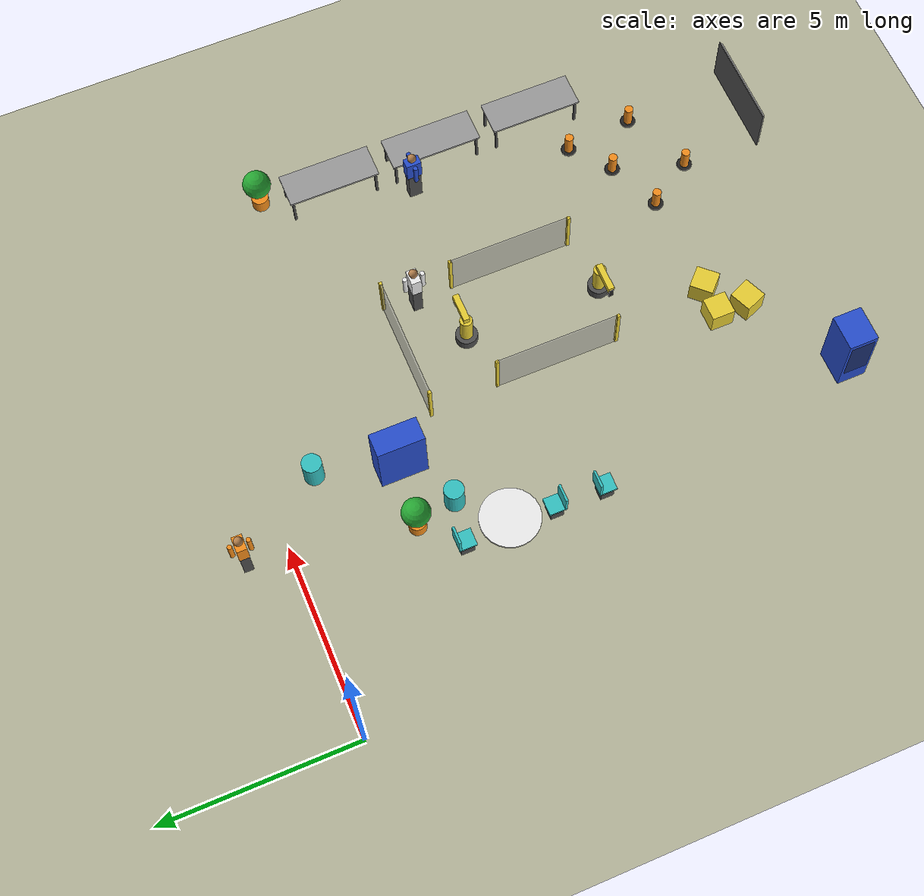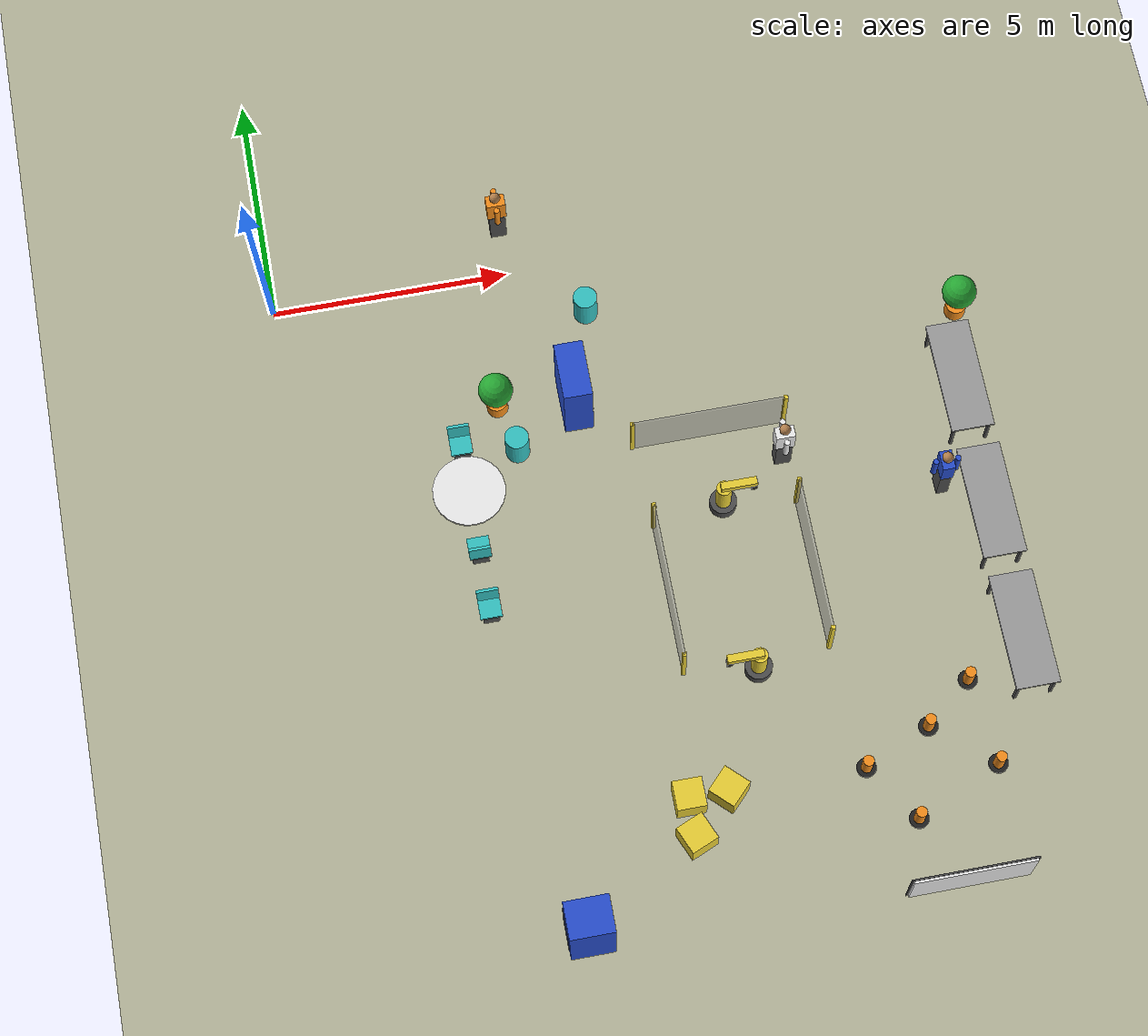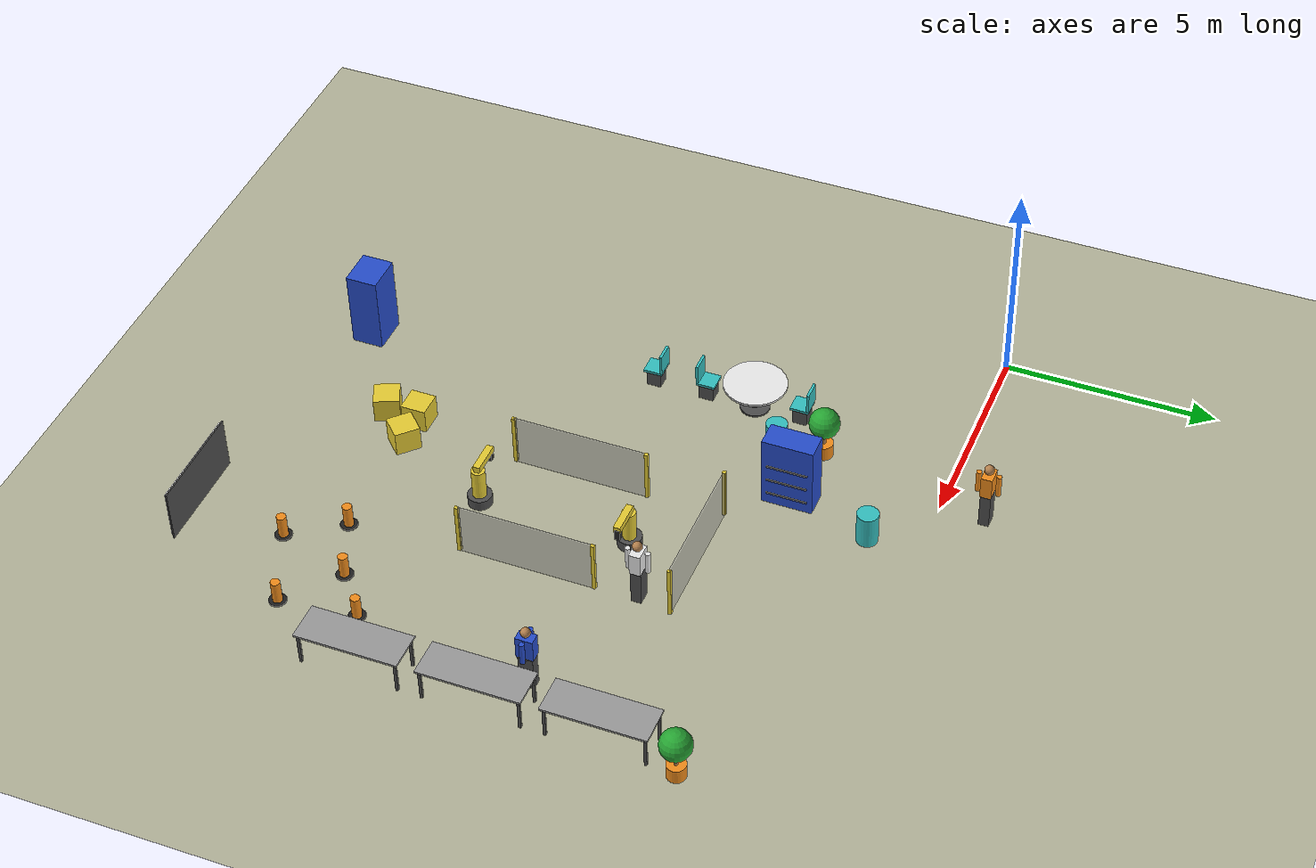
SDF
<sdf version="1.6">
 <world name="smart_building">
  <model name="ground_plane">
   <static>true</static>
   <link name="link">
    <collision name="collision">
     <geometry><plane><normal>0 0 1</normal><size>100 100</size></plane></geometry>
     <surface><friction><ode><mu>1.0</mu><mu2>1.0</mu2></ode></friction></surface>
    </collision>
    <visual name="visual">
     <geometry><plane><normal>0 0 1</normal><size>100 100</size></plane></geometry>
     <material>
      <script><uri>file://media/materials/scripts/gazebo.material</uri><name>Gazebo/Residential</name></script>
     </material>
    </visual>
   </link>
  </model>
  <model name="cafe_table_2">
   <static>true</static>
   <pose>3.4000 -5.0000 0.0000 0.0000 0.0000 0.0000</pose>
   <link name="link_0">
    <pose>0.0000 0.0000 0.7250 0.0000 0.0000 0.0000</pose>
    <collision name="link_0_collision">
     <geometry><cylinder><radius>0.7500</radius><length>0.0500</length></cylinder></geometry>
    </collision>
    <visual name="link_0_visual">
     <geometry><cylinder><radius>0.7500</radius><length>0.0500</length></cylinder></geometry>
     <material>
      <script><uri>file://media/materials/scripts/gazebo.material</uri><name>Gazebo/White</name></script>
     </material>
    </visual>
   </link>
   <link name="link_1">
    <pose>0.0000 0.0000 0.3500 0.0000 0.0000 0.0000</pose>
    <collision name="link_1_collision">
     <geometry><cylinder><radius>0.0800</radius><length>0.7000</length></cylinder></geometry>
    </collision>
    <visual name="link_1_visual">
     <geometry><cylinder><radius>0.0800</radius><length>0.7000</length></cylinder></geometry>
     <material>
      <script><uri>file://media/materials/scripts/gazebo.material</uri><name>Gazebo/DarkGrey</name></script>
     </material>
    </visual>
   </link>
   <link name="link_2">
    <pose>0.0000 0.0000 0.0200 0.0000 0.0000 0.0000</pose>
    <collision name="link_2_collision">
     <geometry><cylinder><radius>0.3500</radius><length>0.0400</length></cylinder></geometry>
    </collision>
    <visual name="link_2_visual">
     <geometry><cylinder><radius>0.3500</radius><length>0.0400</length></cylinder></geometry>
     <material>
      <script><uri>file://media/materials/scripts/gazebo.material</uri><name>Gazebo/DarkGrey</name></script>
     </material>
    </visual>
   </link>
  </model>
  <model name="cafe_chair_2_0">
   <static>true</static>
   <pose>3.4000 -3.8500 0.0000 0.0000 0.0000 3.1416</pose>
   <link name="link_0">
    <pose>0.0000 0.0000 0.4400 0.0000 0.0000 0.0000</pose>
    <collision name="link_0_collision">
     <geometry><box><size>0.4500 0.4500 0.0600</size></box></geometry>
    </collision>
    <visual name="link_0_visual">
     <geometry><box><size>0.4500 0.4500 0.0600</size></box></geometry>
     <material>
      <script><uri>file://media/materials/scripts/gazebo.material</uri><name>Gazebo/Turquoise</name></script>
     </material>
    </visual>
   </link>
   <link name="link_1">
    <pose>0.0000 -0.2000 0.7200 0.0000 0.0000 0.0000</pose>
    <collision name="link_1_collision">
     <geometry><box><size>0.4500 0.0600 0.5000</size></box></geometry>
    </collision>
    <visual name="link_1_visual">
     <geometry><box><size>0.4500 0.0600 0.5000</size></box></geometry>
     <material>
      <script><uri>file://media/materials/scripts/gazebo.material</uri><name>Gazebo/Turquoise</name></script>
     </material>
    </visual>
   </link>
   <link name="link_2">
    <pose>0.0000 0.0000 0.2100 0.0000 0.0000 0.0000</pose>
    <collision name="link_2_collision">
     <geometry><box><size>0.3400 0.3400 0.4200</size></box></geometry>
    </collision>
    <visual name="link_2_visual">
     <geometry><box><size>0.3400 0.3400 0.4200</size></box></geometry>
     <material>
      <script><uri>file://media/materials/scripts/gazebo.material</uri><name>Gazebo/DarkGrey</name></script>
     </material>
    </visual>
   </link>
  </model>
  <model name="cafe_chair_2_1">
   <static>true</static>
   <pose>3.4000 -6.1500 0.0000 0.0000 0.0000 0.0000</pose>
   <link name="link_0">
    <pose>0.0000 0.0000 0.4400 0.0000 0.0000 0.0000</pose>
    <collision name="link_0_collision">
     <geometry><box><size>0.4500 0.4500 0.0600</size></box></geometry>
    </collision>
    <visual name="link_0_visual">
     <geometry><box><size>0.4500 0.4500 0.0600</size></box></geometry>
     <material>
      <script><uri>file://media/materials/scripts/gazebo.material</uri><name>Gazebo/Turquoise</name></script>
     </material>
    </visual>
   </link>
   <link name="link_1">
    <pose>0.0000 -0.2000 0.7200 0.0000 0.0000 0.0000</pose>
    <collision name="link_1_collision">
     <geometry><box><size>0.4500 0.0600 0.5000</size></box></geometry>
    </collision>
    <visual name="link_1_visual">
     <geometry><box><size>0.4500 0.0600 0.5000</size></box></geometry>
     <material>
      <script><uri>file://media/materials/scripts/gazebo.material</uri><name>Gazebo/Turquoise</name></script>
     </material>
    </visual>
   </link>
   <link name="link_2">
    <pose>0.0000 0.0000 0.2100 0.0000 0.0000 0.0000</pose>
    <collision name="link_2_collision">
     <geometry><box><size>0.3400 0.3400 0.4200</size></box></geometry>
    </collision>
    <visual name="link_2_visual">
     <geometry><box><size>0.3400 0.3400 0.4200</size></box></geometry>
     <material>
      <script><uri>file://media/materials/scripts/gazebo.material</uri><name>Gazebo/DarkGrey</name></script>
     </material>
    </visual>
   </link>
  </model>
  <model name="cafe_chair_5_0">
   <static>true</static>
   <pose>3.4000 -7.4500 0.0000 0.0000 0.0000 3.1416</pose>
   <link name="link_0">
    <pose>0.0000 0.0000 0.4400 0.0000 0.0000 0.0000</pose>
    <collision name="link_0_collision">
     <geometry><box><size>0.4500 0.4500 0.0600</size></box></geometry>
    </collision>
    <visual name="link_0_visual">
     <geometry><box><size>0.4500 0.4500 0.0600</size></box></geometry>
     <material>
      <script><uri>file://media/materials/scripts/gazebo.material</uri><name>Gazebo/Turquoise</name></script>
     </material>
    </visual>
   </link>
   <link name="link_1">
    <pose>0.0000 -0.2000 0.7200 0.0000 0.0000 0.0000</pose>
    <collision name="link_1_collision">
     <geometry><box><size>0.4500 0.0600 0.5000</size></box></geometry>
    </collision>
    <visual name="link_1_visual">
     <geometry><box><size>0.4500 0.0600 0.5000</size></box></geometry>
     <material>
      <script><uri>file://media/materials/scripts/gazebo.material</uri><name>Gazebo/Turquoise</name></script>
     </material>
    </visual>
   </link>
   <link name="link_2">
    <pose>0.0000 0.0000 0.2100 0.0000 0.0000 0.0000</pose>
    <collision name="link_2_collision">
     <geometry><box><size>0.3400 0.3400 0.4200</size></box></geometry>
    </collision>
    <visual name="link_2_visual">
     <geometry><box><size>0.3400 0.3400 0.4200</size></box></geometry>
     <material>
      <script><uri>file://media/materials/scripts/gazebo.material</uri><name>Gazebo/DarkGrey</name></script>
     </material>
    </visual>
   </link>
  </model>
  <model name="cafe_vending_1">
   <static>true</static>
   <pose>4.2000 -14.3000 0.0000 0.0000 0.0000 0.0000</pose>
   <link name="link_0">
    <pose>0.0000 0.0000 0.9500 0.0000 0.0000 0.0000</pose>
    <collision name="link_0_collision">
     <geometry><box><size>0.9000 0.7500 1.9000</size></box></geometry>
    </collision>
    <visual name="link_0_visual">
     <geometry><box><size>0.9000 0.7500 1.9000</size></box></geometry>
     <material>
      <script><uri>file://media/materials/scripts/gazebo.material</uri><name>Gazebo/Blue</name></script>
     </material>
    </visual>
   </link>
   <link name="link_1">
    <pose>-0.4600 0.0000 1.1500 0.0000 0.0000 0.0000</pose>
    <visual name="link_1_visual">
     <geometry><box><size>0.0200 0.6000 1.2000</size></box></geometry>
     <material>
      <script><uri>file://media/materials/scripts/gazebo.material</uri><name>Gazebo/BlackTransparent</name></script>
     </material>
    </visual>
   </link>
  </model>
  <model name="plant_cafe_b">
   <static>true</static>
   <pose>4.3000 -3.0000 0.0000 0.0000 0.0000 0.0000</pose>
   <link name="link_0">
    <pose>0.0000 0.0000 0.1800 0.0000 0.0000 0.0000</pose>
    <collision name="link_0_collision">
     <geometry><cylinder><radius>0.2200</radius><length>0.3600</length></cylinder></geometry>
    </collision>
    <visual name="link_0_visual">
     <geometry><cylinder><radius>0.2200</radius><length>0.3600</length></cylinder></geometry>
     <material>
      <script><uri>file://media/materials/scripts/gazebo.material</uri><name>Gazebo/Orange</name></script>
     </material>
    </visual>
   </link>
   <link name="link_1">
    <pose>0.0000 0.0000 0.5000 0.0000 0.0000 0.0000</pose>
    <collision name="link_1_collision">
     <geometry><cylinder><radius>0.0500</radius><length>0.4000</length></cylinder></geometry>
    </collision>
    <visual name="link_1_visual">
     <geometry><cylinder><radius>0.0500</radius><length>0.4000</length></cylinder></geometry>
     <material>
      <script><uri>file://media/materials/scripts/gazebo.material</uri><name>Gazebo/Wood</name></script>
     </material>
    </visual>
   </link>
   <link name="link_2">
    <pose>0.0000 0.0000 0.9500 0.0000 0.0000 0.0000</pose>
    <collision name="link_2_collision"><geometry><sphere><radius>0.3600</radius></sphere></geometry></collision>
    <visual name="link_2_visual">
     <geometry><sphere><radius>0.3600</radius></sphere></geometry>
     <material>
      <script><uri>file://media/materials/scripts/gazebo.material</uri><name>Gazebo/Green</name></script>
     </material>
    </visual>
   </link>
  </model>
  <model name="cafe_bin">
   <static>true</static>
   <pose>4.5500 -4.0500 0.0000 0.0000 0.0000 0.0000</pose>
   <link name="link_0">
    <pose>0.0000 0.0000 0.4000 0.0000 0.0000 0.0000</pose>
    <collision name="link_0_collision">
     <geometry><cylinder><radius>0.2500</radius><length>0.8000</length></cylinder></geometry>
    </collision>
    <visual name="link_0_visual">
     <geometry><cylinder><radius>0.2500</radius><length>0.8000</length></cylinder></geometry>
     <material>
      <script><uri>file://media/materials/scripts/gazebo.material</uri><name>Gazebo/Turquoise</name></script>
     </material>
    </visual>
   </link>
  </model>
  <model name="lab_bench_0">
   <static>true</static>
   <pose>13.8000 -4.4000 0.0000 0.0000 0.0000 1.5708</pose>
   <link name="link_0">
    <pose>0.0000 0.0000 0.8250 0.0000 0.0000 0.0000</pose>
    <collision name="link_0_collision">
     <geometry><box><size>2.4000 0.9000 0.0500</size></box></geometry>
    </collision>
    <visual name="link_0_visual">
     <geometry><box><size>2.4000 0.9000 0.0500</size></box></geometry>
     <material>
      <script><uri>file://media/materials/scripts/gazebo.material</uri><name>Gazebo/Grey</name></script>
     </material>
    </visual>
   </link>
   <link name="link_1">
    <pose>-1.1200 -0.3700 0.4000 0.0000 0.0000 0.0000</pose>
    <collision name="link_1_collision">
     <geometry><box><size>0.0600 0.0600 0.8000</size></box></geometry>
    </collision>
    <visual name="link_1_visual">
     <geometry><box><size>0.0600 0.0600 0.8000</size></box></geometry>
     <material>
      <script><uri>file://media/materials/scripts/gazebo.material</uri><name>Gazebo/DarkGrey</name></script>
     </material>
    </visual>
   </link>
   <link name="link_2">
    <pose>-1.1200 0.3700 0.4000 0.0000 0.0000 0.0000</pose>
    <collision name="link_2_collision">
     <geometry><box><size>0.0600 0.0600 0.8000</size></box></geometry>
    </collision>
    <visual name="link_2_visual">
     <geometry><box><size>0.0600 0.0600 0.8000</size></box></geometry>
     <material>
      <script><uri>file://media/materials/scripts/gazebo.material</uri><name>Gazebo/DarkGrey</name></script>
     </material>
    </visual>
   </link>
   <link name="link_3">
    <pose>1.1200 -0.3700 0.4000 0.0000 0.0000 0.0000</pose>
    <collision name="link_3_collision">
     <geometry><box><size>0.0600 0.0600 0.8000</size></box></geometry>
    </collision>
    <visual name="link_3_visual">
     <geometry><box><size>0.0600 0.0600 0.8000</size></box></geometry>
     <material>
      <script><uri>file://media/materials/scripts/gazebo.material</uri><name>Gazebo/DarkGrey</name></script>
     </material>
    </visual>
   </link>
   <link name="link_4">
    <pose>1.1200 0.3700 0.4000 0.0000 0.0000 0.0000</pose>
    <collision name="link_4_collision">
     <geometry><box><size>0.0600 0.0600 0.8000</size></box></geometry>
    </collision>
    <visual name="link_4_visual">
     <geometry><box><size>0.0600 0.0600 0.8000</size></box></geometry>
     <material>
      <script><uri>file://media/materials/scripts/gazebo.material</uri><name>Gazebo/DarkGrey</name></script>
     </material>
    </visual>
   </link>
  </model>
  <model name="lab_bench_1">
   <static>true</static>
   <pose>13.8000 -7.2000 0.0000 0.0000 0.0000 1.5708</pose>
   <link name="link_0">
    <pose>0.0000 0.0000 0.8250 0.0000 0.0000 0.0000</pose>
    <collision name="link_0_collision">
     <geometry><box><size>2.4000 0.9000 0.0500</size></box></geometry>
    </collision>
    <visual name="link_0_visual">
     <geometry><box><size>2.4000 0.9000 0.0500</size></box></geometry>
     <material>
      <script><uri>file://media/materials/scripts/gazebo.material</uri><name>Gazebo/Grey</name></script>
     </material>
    </visual>
   </link>
   <link name="link_1">
    <pose>-1.1200 -0.3700 0.4000 0.0000 0.0000 0.0000</pose>
    <collision name="link_1_collision">
     <geometry><box><size>0.0600 0.0600 0.8000</size></box></geometry>
    </collision>
    <visual name="link_1_visual">
     <geometry><box><size>0.0600 0.0600 0.8000</size></box></geometry>
     <material>
      <script><uri>file://media/materials/scripts/gazebo.material</uri><name>Gazebo/DarkGrey</name></script>
     </material>
    </visual>
   </link>
   <link name="link_2">
    <pose>-1.1200 0.3700 0.4000 0.0000 0.0000 0.0000</pose>
    <collision name="link_2_collision">
     <geometry><box><size>0.0600 0.0600 0.8000</size></box></geometry>
    </collision>
    <visual name="link_2_visual">
     <geometry><box><size>0.0600 0.0600 0.8000</size></box></geometry>
     <material>
      <script><uri>file://media/materials/scripts/gazebo.material</uri><name>Gazebo/DarkGrey</name></script>
     </material>
    </visual>
   </link>
   <link name="link_3">
    <pose>1.1200 -0.3700 0.4000 0.0000 0.0000 0.0000</pose>
    <collision name="link_3_collision">
     <geometry><box><size>0.0600 0.0600 0.8000</size></box></geometry>
    </collision>
    <visual name="link_3_visual">
     <geometry><box><size>0.0600 0.0600 0.8000</size></box></geometry>
     <material>
      <script><uri>file://media/materials/scripts/gazebo.material</uri><name>Gazebo/DarkGrey</name></script>
     </material>
    </visual>
   </link>
   <link name="link_4">
    <pose>1.1200 0.3700 0.4000 0.0000 0.0000 0.0000</pose>
    <collision name="link_4_collision">
     <geometry><box><size>0.0600 0.0600 0.8000</size></box></geometry>
    </collision>
    <visual name="link_4_visual">
     <geometry><box><size>0.0600 0.0600 0.8000</size></box></geometry>
     <material>
      <script><uri>file://media/materials/scripts/gazebo.material</uri><name>Gazebo/DarkGrey</name></script>
     </material>
    </visual>
   </link>
  </model>
  <model name="lab_bench_2">
   <static>true</static>
   <pose>13.8000 -10.0000 0.0000 0.0000 0.0000 1.5708</pose>
   <link name="link_0">
    <pose>0.0000 0.0000 0.8250 0.0000 0.0000 0.0000</pose>
    <collision name="link_0_collision">
     <geometry><box><size>2.4000 0.9000 0.0500</size></box></geometry>
    </collision>
    <visual name="link_0_visual">
     <geometry><box><size>2.4000 0.9000 0.0500</size></box></geometry>
     <material>
      <script><uri>file://media/materials/scripts/gazebo.material</uri><name>Gazebo/Grey</name></script>
     </material>
    </visual>
   </link>
   <link name="link_1">
    <pose>-1.1200 -0.3700 0.4000 0.0000 0.0000 0.0000</pose>
    <collision name="link_1_collision">
     <geometry><box><size>0.0600 0.0600 0.8000</size></box></geometry>
    </collision>
    <visual name="link_1_visual">
     <geometry><box><size>0.0600 0.0600 0.8000</size></box></geometry>
     <material>
      <script><uri>file://media/materials/scripts/gazebo.material</uri><name>Gazebo/DarkGrey</name></script>
     </material>
    </visual>
   </link>
   <link name="link_2">
    <pose>-1.1200 0.3700 0.4000 0.0000 0.0000 0.0000</pose>
    <collision name="link_2_collision">
     <geometry><box><size>0.0600 0.0600 0.8000</size></box></geometry>
    </collision>
    <visual name="link_2_visual">
     <geometry><box><size>0.0600 0.0600 0.8000</size></box></geometry>
     <material>
      <script><uri>file://media/materials/scripts/gazebo.material</uri><name>Gazebo/DarkGrey</name></script>
     </material>
    </visual>
   </link>
   <link name="link_3">
    <pose>1.1200 -0.3700 0.4000 0.0000 0.0000 0.0000</pose>
    <collision name="link_3_collision">
     <geometry><box><size>0.0600 0.0600 0.8000</size></box></geometry>
    </collision>
    <visual name="link_3_visual">
     <geometry><box><size>0.0600 0.0600 0.8000</size></box></geometry>
     <material>
      <script><uri>file://media/materials/scripts/gazebo.material</uri><name>Gazebo/DarkGrey</name></script>
     </material>
    </visual>
   </link>
   <link name="link_4">
    <pose>1.1200 0.3700 0.4000 0.0000 0.0000 0.0000</pose>
    <collision name="link_4_collision">
     <geometry><box><size>0.0600 0.0600 0.8000</size></box></geometry>
    </collision>
    <visual name="link_4_visual">
     <geometry><box><size>0.0600 0.0600 0.8000</size></box></geometry>
     <material>
      <script><uri>file://media/materials/scripts/gazebo.material</uri><name>Gazebo/DarkGrey</name></script>
     </material>
    </visual>
   </link>
  </model>
  <model name="lab_arm_a">
   <static>true</static>
   <pose>8.5000 -6.0000 0.0000 0.0000 0.0000 0.0000</pose>
   <link name="link_0">
    <pose>0.0000 0.0000 0.1250 0.0000 0.0000 0.0000</pose>
    <collision name="link_0_collision">
     <geometry><cylinder><radius>0.2800</radius><length>0.2500</length></cylinder></geometry>
    </collision>
    <visual name="link_0_visual">
     <geometry><cylinder><radius>0.2800</radius><length>0.2500</length></cylinder></geometry>
     <material>
      <script><uri>file://media/materials/scripts/gazebo.material</uri><name>Gazebo/DarkGrey</name></script>
     </material>
    </visual>
   </link>
   <link name="link_1">
    <pose>0.0000 0.0000 0.5500 0.0000 0.0000 0.0000</pose>
    <collision name="link_1_collision">
     <geometry><cylinder><radius>0.1600</radius><length>0.8500</length></cylinder></geometry>
    </collision>
    <visual name="link_1_visual">
     <geometry><cylinder><radius>0.1600</radius><length>0.8500</length></cylinder></geometry>
     <material>
      <script><uri>file://media/materials/scripts/gazebo.material</uri><name>Gazebo/ZincYellow</name></script>
     </material>
    </visual>
   </link>
   <link name="link_2">
    <pose>0.3000 0.0000 1.0500 0.0000 0.0000 0.0000</pose>
    <collision name="link_2_collision">
     <geometry><box><size>0.7500 0.1600 0.1600</size></box></geometry>
    </collision>
    <visual name="link_2_visual">
     <geometry><box><size>0.7500 0.1600 0.1600</size></box></geometry>
     <material>
      <script><uri>file://media/materials/scripts/gazebo.material</uri><name>Gazebo/ZincYellow</name></script>
     </material>
    </visual>
   </link>
   <link name="link_3">
    <pose>0.6200 0.0000 0.9000 0.0000 0.0000 0.0000</pose>
    <collision name="link_3_collision">
     <geometry><box><size>0.1200 0.1200 0.2800</size></box></geometry>
    </collision>
    <visual name="link_3_visual">
     <geometry><box><size>0.1200 0.1200 0.2800</size></box></geometry>
     <material>
      <script><uri>file://media/materials/scripts/gazebo.material</uri><name>Gazebo/FlatBlack</name></script>
     </material>
    </visual>
   </link>
  </model>
  <model name="lab_arm_b">
   <static>true</static>
   <pose>8.5000 -9.6000 0.0000 0.0000 0.0000 3.1416</pose>
   <link name="link_0">
    <pose>0.0000 0.0000 0.1250 0.0000 0.0000 0.0000</pose>
    <collision name="link_0_collision">
     <geometry><cylinder><radius>0.2800</radius><length>0.2500</length></cylinder></geometry>
    </collision>
    <visual name="link_0_visual">
     <geometry><cylinder><radius>0.2800</radius><length>0.2500</length></cylinder></geometry>
     <material>
      <script><uri>file://media/materials/scripts/gazebo.material</uri><name>Gazebo/DarkGrey</name></script>
     </material>
    </visual>
   </link>
   <link name="link_1">
    <pose>0.0000 0.0000 0.5500 0.0000 0.0000 0.0000</pose>
    <collision name="link_1_collision">
     <geometry><cylinder><radius>0.1600</radius><length>0.8500</length></cylinder></geometry>
    </collision>
    <visual name="link_1_visual">
     <geometry><cylinder><radius>0.1600</radius><length>0.8500</length></cylinder></geometry>
     <material>
      <script><uri>file://media/materials/scripts/gazebo.material</uri><name>Gazebo/ZincYellow</name></script>
     </material>
    </visual>
   </link>
   <link name="link_2">
    <pose>0.3000 0.0000 1.0500 0.0000 0.0000 0.0000</pose>
    <collision name="link_2_collision">
     <geometry><box><size>0.7500 0.1600 0.1600</size></box></geometry>
    </collision>
    <visual name="link_2_visual">
     <geometry><box><size>0.7500 0.1600 0.1600</size></box></geometry>
     <material>
      <script><uri>file://media/materials/scripts/gazebo.material</uri><name>Gazebo/ZincYellow</name></script>
     </material>
    </visual>
   </link>
   <link name="link_3">
    <pose>0.6200 0.0000 0.9000 0.0000 0.0000 0.0000</pose>
    <collision name="link_3_collision">
     <geometry><box><size>0.1200 0.1200 0.2800</size></box></geometry>
    </collision>
    <visual name="link_3_visual">
     <geometry><box><size>0.1200 0.1200 0.2800</size></box></geometry>
     <material>
      <script><uri>file://media/materials/scripts/gazebo.material</uri><name>Gazebo/FlatBlack</name></script>
     </material>
    </visual>
   </link>
  </model>
  <model name="lab_fence_0">
   <static>true</static>
   <pose>7.0000 -7.8000 0.0000 0.0000 0.0000 1.5708</pose>
   <link name="link_0">
    <pose>0.0000 0.0000 0.6500 0.0000 0.0000 0.0000</pose>
    <collision name="link_0_collision">
     <geometry><box><size>3.2000 0.0400 1.3000</size></box></geometry>
    </collision>
    <visual name="link_0_visual">
     <geometry><box><size>3.2000 0.0400 1.3000</size></box></geometry>
     <material>
      <script><uri>file://media/materials/scripts/gazebo.material</uri><name>Gazebo/GreyTransparent</name></script>
     </material>
    </visual>
   </link>
   <link name="link_1">
    <pose>-1.6000 0.0000 0.6500 0.0000 0.0000 0.0000</pose>
    <collision name="link_1_collision">
     <geometry><box><size>0.0800 0.0800 1.3000</size></box></geometry>
    </collision>
    <visual name="link_1_visual">
     <geometry><box><size>0.0800 0.0800 1.3000</size></box></geometry>
     <material>
      <script><uri>file://media/materials/scripts/gazebo.material</uri><name>Gazebo/ZincYellow</name></script>
     </material>
    </visual>
   </link>
   <link name="link_2">
    <pose>1.6000 0.0000 0.6500 0.0000 0.0000 0.0000</pose>
    <collision name="link_2_collision">
     <geometry><box><size>0.0800 0.0800 1.3000</size></box></geometry>
    </collision>
    <visual name="link_2_visual">
     <geometry><box><size>0.0800 0.0800 1.3000</size></box></geometry>
     <material>
      <script><uri>file://media/materials/scripts/gazebo.material</uri><name>Gazebo/ZincYellow</name></script>
     </material>
    </visual>
   </link>
  </model>
  <model name="lab_fence_1">
   <static>true</static>
   <pose>10.0000 -7.8000 0.0000 0.0000 0.0000 1.5708</pose>
   <link name="link_0">
    <pose>0.0000 0.0000 0.6500 0.0000 0.0000 0.0000</pose>
    <collision name="link_0_collision">
     <geometry><box><size>3.2000 0.0400 1.3000</size></box></geometry>
    </collision>
    <visual name="link_0_visual">
     <geometry><box><size>3.2000 0.0400 1.3000</size></box></geometry>
     <material>
      <script><uri>file://media/materials/scripts/gazebo.material</uri><name>Gazebo/GreyTransparent</name></script>
     </material>
    </visual>
   </link>
   <link name="link_1">
    <pose>-1.6000 0.0000 0.6500 0.0000 0.0000 0.0000</pose>
    <collision name="link_1_collision">
     <geometry><box><size>0.0800 0.0800 1.3000</size></box></geometry>
    </collision>
    <visual name="link_1_visual">
     <geometry><box><size>0.0800 0.0800 1.3000</size></box></geometry>
     <material>
      <script><uri>file://media/materials/scripts/gazebo.material</uri><name>Gazebo/ZincYellow</name></script>
     </material>
    </visual>
   </link>
   <link name="link_2">
    <pose>1.6000 0.0000 0.6500 0.0000 0.0000 0.0000</pose>
    <collision name="link_2_collision">
     <geometry><box><size>0.0800 0.0800 1.3000</size></box></geometry>
    </collision>
    <visual name="link_2_visual">
     <geometry><box><size>0.0800 0.0800 1.3000</size></box></geometry>
     <material>
      <script><uri>file://media/materials/scripts/gazebo.material</uri><name>Gazebo/ZincYellow</name></script>
     </material>
    </visual>
   </link>
  </model>
  <model name="lab_fence_2">
   <static>true</static>
   <pose>8.5000 -4.4000 0.0000 0.0000 0.0000 0.0000</pose>
   <link name="link_0">
    <pose>0.0000 0.0000 0.6500 0.0000 0.0000 0.0000</pose>
    <collision name="link_0_collision">
     <geometry><box><size>3.2000 0.0400 1.3000</size></box></geometry>
    </collision>
    <visual name="link_0_visual">
     <geometry><box><size>3.2000 0.0400 1.3000</size></box></geometry>
     <material>
      <script><uri>file://media/materials/scripts/gazebo.material</uri><name>Gazebo/GreyTransparent</name></script>
     </material>
    </visual>
   </link>
   <link name="link_1">
    <pose>-1.6000 0.0000 0.6500 0.0000 0.0000 0.0000</pose>
    <collision name="link_1_collision">
     <geometry><box><size>0.0800 0.0800 1.3000</size></box></geometry>
    </collision>
    <visual name="link_1_visual">
     <geometry><box><size>0.0800 0.0800 1.3000</size></box></geometry>
     <material>
      <script><uri>file://media/materials/scripts/gazebo.material</uri><name>Gazebo/ZincYellow</name></script>
     </material>
    </visual>
   </link>
   <link name="link_2">
    <pose>1.6000 0.0000 0.6500 0.0000 0.0000 0.0000</pose>
    <collision name="link_2_collision">
     <geometry><box><size>0.0800 0.0800 1.3000</size></box></geometry>
    </collision>
    <visual name="link_2_visual">
     <geometry><box><size>0.0800 0.0800 1.3000</size></box></geometry>
     <material>
      <script><uri>file://media/materials/scripts/gazebo.material</uri><name>Gazebo/ZincYellow</name></script>
     </material>
    </visual>
   </link>
  </model>
  <model name="lab_cone_0">
   <static>true</static>
   <pose>11.6000 -11.4000 0.0000 0.0000 0.0000 0.0000</pose>
   <link name="link_0">
    <pose>0.0000 0.0000 0.0150 0.0000 0.0000 0.0000</pose>
    <collision name="link_0_collision">
     <geometry><cylinder><radius>0.2000</radius><length>0.0300</length></cylinder></geometry>
    </collision>
    <visual name="link_0_visual">
     <geometry><cylinder><radius>0.2000</radius><length>0.0300</length></cylinder></geometry>
     <material>
      <script><uri>file://media/materials/scripts/gazebo.material</uri><name>Gazebo/FlatBlack</name></script>
     </material>
    </visual>
   </link>
   <link name="link_1">
    <pose>0.0000 0.0000 0.3000 0.0000 0.0000 0.0000</pose>
    <collision name="link_1_collision">
     <geometry><cylinder><radius>0.1100</radius><length>0.5500</length></cylinder></geometry>
    </collision>
    <visual name="link_1_visual">
     <geometry><cylinder><radius>0.1100</radius><length>0.5500</length></cylinder></geometry>
     <material>
      <script><uri>file://media/materials/scripts/gazebo.material</uri><name>Gazebo/Orange</name></script>
     </material>
    </visual>
   </link>
  </model>
  <model name="lab_cone_1">
   <static>true</static>
   <pose>12.8000 -12.4000 0.0000 0.0000 0.0000 0.0000</pose>
   <link name="link_0">
    <pose>0.0000 0.0000 0.0150 0.0000 0.0000 0.0000</pose>
    <collision name="link_0_collision">
     <geometry><cylinder><radius>0.2000</radius><length>0.0300</length></cylinder></geometry>
    </collision>
    <visual name="link_0_visual">
     <geometry><cylinder><radius>0.2000</radius><length>0.0300</length></cylinder></geometry>
     <material>
      <script><uri>file://media/materials/scripts/gazebo.material</uri><name>Gazebo/FlatBlack</name></script>
     </material>
    </visual>
   </link>
   <link name="link_1">
    <pose>0.0000 0.0000 0.3000 0.0000 0.0000 0.0000</pose>
    <collision name="link_1_collision">
     <geometry><cylinder><radius>0.1100</radius><length>0.5500</length></cylinder></geometry>
    </collision>
    <visual name="link_1_visual">
     <geometry><cylinder><radius>0.1100</radius><length>0.5500</length></cylinder></geometry>
     <material>
      <script><uri>file://media/materials/scripts/gazebo.material</uri><name>Gazebo/Orange</name></script>
     </material>
    </visual>
   </link>
  </model>
  <model name="lab_cone_2">
   <static>true</static>
   <pose>11.0000 -13.2000 0.0000 0.0000 0.0000 0.0000</pose>
   <link name="link_0">
    <pose>0.0000 0.0000 0.0150 0.0000 0.0000 0.0000</pose>
    <collision name="link_0_collision">
     <geometry><cylinder><radius>0.2000</radius><length>0.0300</length></cylinder></geometry>
    </collision>
    <visual name="link_0_visual">
     <geometry><cylinder><radius>0.2000</radius><length>0.0300</length></cylinder></geometry>
     <material>
      <script><uri>file://media/materials/scripts/gazebo.material</uri><name>Gazebo/FlatBlack</name></script>
     </material>
    </visual>
   </link>
   <link name="link_1">
    <pose>0.0000 0.0000 0.3000 0.0000 0.0000 0.0000</pose>
    <collision name="link_1_collision">
     <geometry><cylinder><radius>0.1100</radius><length>0.5500</length></cylinder></geometry>
    </collision>
    <visual name="link_1_visual">
     <geometry><cylinder><radius>0.1100</radius><length>0.5500</length></cylinder></geometry>
     <material>
      <script><uri>file://media/materials/scripts/gazebo.material</uri><name>Gazebo/Orange</name></script>
     </material>
    </visual>
   </link>
  </model>
  <model name="lab_cone_3">
   <static>true</static>
   <pose>12.6000 -10.6000 0.0000 0.0000 0.0000 0.0000</pose>
   <link name="link_0">
    <pose>0.0000 0.0000 0.0150 0.0000 0.0000 0.0000</pose>
    <collision name="link_0_collision">
     <geometry><cylinder><radius>0.2000</radius><length>0.0300</length></cylinder></geometry>
    </collision>
    <visual name="link_0_visual">
     <geometry><cylinder><radius>0.2000</radius><length>0.0300</length></cylinder></geometry>
     <material>
      <script><uri>file://media/materials/scripts/gazebo.material</uri><name>Gazebo/FlatBlack</name></script>
     </material>
    </visual>
   </link>
   <link name="link_1">
    <pose>0.0000 0.0000 0.3000 0.0000 0.0000 0.0000</pose>
    <collision name="link_1_collision">
     <geometry><cylinder><radius>0.1100</radius><length>0.5500</length></cylinder></geometry>
    </collision>
    <visual name="link_1_visual">
     <geometry><cylinder><radius>0.1100</radius><length>0.5500</length></cylinder></geometry>
     <material>
      <script><uri>file://media/materials/scripts/gazebo.material</uri><name>Gazebo/Orange</name></script>
     </material>
    </visual>
   </link>
  </model>
  <model name="lab_cone_4">
   <static>true</static>
   <pose>10.2000 -12.0000 0.0000 0.0000 0.0000 0.0000</pose>
   <link name="link_0">
    <pose>0.0000 0.0000 0.0150 0.0000 0.0000 0.0000</pose>
    <collision name="link_0_collision">
     <geometry><cylinder><radius>0.2000</radius><length>0.0300</length></cylinder></geometry>
    </collision>
    <visual name="link_0_visual">
     <geometry><cylinder><radius>0.2000</radius><length>0.0300</length></cylinder></geometry>
     <material>
      <script><uri>file://media/materials/scripts/gazebo.material</uri><name>Gazebo/FlatBlack</name></script>
     </material>
    </visual>
   </link>
   <link name="link_1">
    <pose>0.0000 0.0000 0.3000 0.0000 0.0000 0.0000</pose>
    <collision name="link_1_collision">
     <geometry><cylinder><radius>0.1100</radius><length>0.5500</length></cylinder></geometry>
    </collision>
    <visual name="link_1_visual">
     <geometry><cylinder><radius>0.1100</radius><length>0.5500</length></cylinder></geometry>
     <material>
      <script><uri>file://media/materials/scripts/gazebo.material</uri><name>Gazebo/Orange</name></script>
     </material>
    </visual>
   </link>
  </model>
  <model name="lab_crate_0">
   <static>true</static>
   <pose>6.6000 -12.0000 0.0000 0.0000 0.0000 0.0000</pose>
   <link name="link_0">
    <pose>0.0000 0.0000 0.3000 0.0000 0.0000 0.0000</pose>
    <collision name="link_0_collision">
     <geometry><box><size>0.6000 0.6000 0.6000</size></box></geometry>
    </collision>
    <visual name="link_0_visual">
     <geometry><box><size>0.6000 0.6000 0.6000</size></box></geometry>
     <material>
      <script><uri>file://media/materials/scripts/gazebo.material</uri><name>Gazebo/ZincYellow</name></script>
     </material>
    </visual>
   </link>
  </model>
  <model name="lab_crate_1">
   <static>true</static>
   <pose>6.6000 -12.8000 0.0000 0.0000 0.0000 0.4000</pose>
   <link name="link_0">
    <pose>0.0000 0.0000 0.3000 0.0000 0.0000 0.0000</pose>
    <collision name="link_0_collision">
     <geometry><box><size>0.6000 0.6000 0.6000</size></box></geometry>
    </collision>
    <visual name="link_0_visual">
     <geometry><box><size>0.6000 0.6000 0.6000</size></box></geometry>
     <material>
      <script><uri>file://media/materials/scripts/gazebo.material</uri><name>Gazebo/ZincYellow</name></script>
     </material>
    </visual>
   </link>
  </model>
  <model name="lab_crate_2">
   <static>true</static>
   <pose>7.4000 -12.0000 0.0000 0.0000 0.0000 0.8000</pose>
   <link name="link_0">
    <pose>0.0000 0.0000 0.3000 0.0000 0.0000 0.0000</pose>
    <collision name="link_0_collision">
     <geometry><box><size>0.6000 0.6000 0.6000</size></box></geometry>
    </collision>
    <visual name="link_0_visual">
     <geometry><box><size>0.6000 0.6000 0.6000</size></box></geometry>
     <material>
      <script><uri>file://media/materials/scripts/gazebo.material</uri><name>Gazebo/ZincYellow</name></script>
     </material>
    </visual>
   </link>
  </model>
  <model name="lab_cabinet">
   <static>true</static>
   <pose>5.9000 -3.2000 0.0000 0.0000 0.0000 1.5708</pose>
   <link name="link_0">
    <pose>0.0000 0.0000 0.9000 0.0000 0.0000 0.0000</pose>
    <collision name="link_0_collision">
     <geometry><box><size>1.2000 0.6000 1.8000</size></box></geometry>
    </collision>
    <visual name="link_0_visual">
     <geometry><box><size>1.2000 0.6000 1.8000</size></box></geometry>
     <material>
      <script><uri>file://media/materials/scripts/gazebo.material</uri><name>Gazebo/Blue</name></script>
     </material>
    </visual>
   </link>
   <link name="link_1">
    <pose>0.0000 -0.3100 0.3000 0.0000 0.0000 0.0000</pose>
    <visual name="link_1_visual">
     <geometry><box><size>0.9600 0.0300 0.0400</size></box></geometry>
     <material>
      <script><uri>file://media/materials/scripts/gazebo.material</uri><name>Gazebo/Grey</name></script>
     </material>
    </visual>
   </link>
   <link name="link_2">
    <pose>0.0000 -0.3100 0.7000 0.0000 0.0000 0.0000</pose>
    <visual name="link_2_visual">
     <geometry><box><size>0.9600 0.0300 0.0400</size></box></geometry>
     <material>
      <script><uri>file://media/materials/scripts/gazebo.material</uri><name>Gazebo/Grey</name></script>
     </material>
    </visual>
   </link>
   <link name="link_3">
    <pose>0.0000 -0.3100 1.1000 0.0000 0.0000 0.0000</pose>
    <visual name="link_3_visual">
     <geometry><box><size>0.9600 0.0300 0.0400</size></box></geometry>
     <material>
      <script><uri>file://media/materials/scripts/gazebo.material</uri><name>Gazebo/Grey</name></script>
     </material>
    </visual>
   </link>
  </model>
  <model name="lab_whiteboard">
   <static>true</static>
   <pose>11.5000 -14.8500 1.6000 0.0000 0.0000 0.0000</pose>
   <link name="link_0">
    <collision name="link_0_collision">
     <geometry><box><size>2.4000 0.0600 1.2000</size></box></geometry>
    </collision>
    <visual name="link_0_visual">
     <geometry><box><size>2.4000 0.0600 1.2000</size></box></geometry>
     <material>
      <script><uri>file://media/materials/scripts/gazebo.material</uri><name>Gazebo/White</name></script>
     </material>
    </visual>
   </link>
   <link name="link_1">
    <pose>0.0000 0.0300 0.0000 0.0000 0.0000 0.0000</pose>
    <visual name="link_1_visual">
     <geometry><box><size>2.4800 0.0300 1.2800</size></box></geometry>
     <material>
      <script><uri>file://media/materials/scripts/gazebo.material</uri><name>Gazebo/DarkGrey</name></script>
     </material>
    </visual>
   </link>
  </model>
  <model name="person_lab_0">
   <static>true</static>
   <pose>9.9000 -5.2000 0.0000 0.0000 0.0000 3.1416</pose>
   <link name="link_0">
    <pose>0.0000 0.0000 0.4250 0.0000 0.0000 0.0000</pose>
    <collision name="link_0_collision">
     <geometry><box><size>0.3400 0.2400 0.8500</size></box></geometry>
    </collision>
    <visual name="link_0_visual">
     <geometry><box><size>0.3400 0.2400 0.8500</size></box></geometry>
     <material>
      <script><uri>file://media/materials/scripts/gazebo.material</uri><name>Gazebo/DarkGrey</name></script>
     </material>
    </visual>
   </link>
   <link name="link_1">
    <pose>0.0000 0.0000 1.1500 0.0000 0.0000 0.0000</pose>
    <collision name="link_1_collision">
     <geometry><box><size>0.4000 0.2600 0.5500</size></box></geometry>
    </collision>
    <visual name="link_1_visual">
     <geometry><box><size>0.4000 0.2600 0.5500</size></box></geometry>
     <material>
      <script><uri>file://media/materials/scripts/gazebo.material</uri><name>Gazebo/White</name></script>
     </material>
    </visual>
   </link>
   <link name="link_2">
    <pose>0.0000 0.2300 1.1500 0.0000 0.0000 0.0000</pose>
    <collision name="link_2_collision">
     <geometry><cylinder><radius>0.0600</radius><length>0.5500</length></cylinder></geometry>
    </collision>
    <visual name="link_2_visual">
     <geometry><cylinder><radius>0.0600</radius><length>0.5500</length></cylinder></geometry>
     <material>
      <script><uri>file://media/materials/scripts/gazebo.material</uri><name>Gazebo/White</name></script>
     </material>
    </visual>
   </link>
   <link name="link_3">
    <pose>0.0000 -0.2300 1.1500 0.0000 0.0000 0.0000</pose>
    <collision name="link_3_collision">
     <geometry><cylinder><radius>0.0600</radius><length>0.5500</length></cylinder></geometry>
    </collision>
    <visual name="link_3_visual">
     <geometry><cylinder><radius>0.0600</radius><length>0.5500</length></cylinder></geometry>
     <material>
      <script><uri>file://media/materials/scripts/gazebo.material</uri><name>Gazebo/White</name></script>
     </material>
    </visual>
   </link>
   <link name="link_4">
    <pose>0.0000 0.0000 1.5500 0.0000 0.0000 0.0000</pose>
    <collision name="link_4_collision"><geometry><sphere><radius>0.1150</radius></sphere></geometry></collision>
    <visual name="link_4_visual">
     <geometry><sphere><radius>0.1150</radius></sphere></geometry>
     <material>
      <script><uri>file://media/materials/scripts/gazebo.material</uri><name>Gazebo/Wood</name></script>
     </material>
    </visual>
   </link>
  </model>
  <model name="person_lab_1">
   <static>true</static>
   <pose>13.0000 -6.4000 0.0000 0.0000 0.0000 -1.5708</pose>
   <link name="link_0">
    <pose>0.0000 0.0000 0.4250 0.0000 0.0000 0.0000</pose>
    <collision name="link_0_collision">
     <geometry><box><size>0.3400 0.2400 0.8500</size></box></geometry>
    </collision>
    <visual name="link_0_visual">
     <geometry><box><size>0.3400 0.2400 0.8500</size></box></geometry>
     <material>
      <script><uri>file://media/materials/scripts/gazebo.material</uri><name>Gazebo/DarkGrey</name></script>
     </material>
    </visual>
   </link>
   <link name="link_1">
    <pose>0.0000 0.0000 1.1500 0.0000 0.0000 0.0000</pose>
    <collision name="link_1_collision">
     <geometry><box><size>0.4000 0.2600 0.5500</size></box></geometry>
    </collision>
    <visual name="link_1_visual">
     <geometry><box><size>0.4000 0.2600 0.5500</size></box></geometry>
     <material>
      <script><uri>file://media/materials/scripts/gazebo.material</uri><name>Gazebo/Blue</name></script>
     </material>
    </visual>
   </link>
   <link name="link_2">
    <pose>0.0000 0.2300 1.1500 0.0000 0.0000 0.0000</pose>
    <collision name="link_2_collision">
     <geometry><cylinder><radius>0.0600</radius><length>0.5500</length></cylinder></geometry>
    </collision>
    <visual name="link_2_visual">
     <geometry><cylinder><radius>0.0600</radius><length>0.5500</length></cylinder></geometry>
     <material>
      <script><uri>file://media/materials/scripts/gazebo.material</uri><name>Gazebo/Blue</name></script>
     </material>
    </visual>
   </link>
   <link name="link_3">
    <pose>0.0000 -0.2300 1.1500 0.0000 0.0000 0.0000</pose>
    <collision name="link_3_collision">
     <geometry><cylinder><radius>0.0600</radius><length>0.5500</length></cylinder></geometry>
    </collision>
    <visual name="link_3_visual">
     <geometry><cylinder><radius>0.0600</radius><length>0.5500</length></cylinder></geometry>
     <material>
      <script><uri>file://media/materials/scripts/gazebo.material</uri><name>Gazebo/Blue</name></script>
     </material>
    </visual>
   </link>
   <link name="link_4">
    <pose>0.0000 0.0000 1.5500 0.0000 0.0000 0.0000</pose>
    <collision name="link_4_collision"><geometry><sphere><radius>0.1150</radius></sphere></geometry></collision>
    <visual name="link_4_visual">
     <geometry><sphere><radius>0.1150</radius></sphere></geometry>
     <material>
      <script><uri>file://media/materials/scripts/gazebo.material</uri><name>Gazebo/Wood</name></script>
     </material>
    </visual>
   </link>
  </model>
  <model name="plant_lab">
   <static>true</static>
   <pose>14.2000 -2.6000 0.0000 0.0000 0.0000 0.0000</pose>
   <link name="link_0">
    <pose>0.0000 0.0000 0.1800 0.0000 0.0000 0.0000</pose>
    <collision name="link_0_collision">
     <geometry><cylinder><radius>0.2200</radius><length>0.3600</length></cylinder></geometry>
    </collision>
    <visual name="link_0_visual">
     <geometry><cylinder><radius>0.2200</radius><length>0.3600</length></cylinder></geometry>
     <material>
      <script><uri>file://media/materials/scripts/gazebo.material</uri><name>Gazebo/Orange</name></script>
     </material>
    </visual>
   </link>
   <link name="link_1">
    <pose>0.0000 0.0000 0.5000 0.0000 0.0000 0.0000</pose>
    <collision name="link_1_collision">
     <geometry><cylinder><radius>0.0500</radius><length>0.4000</length></cylinder></geometry>
    </collision>
    <visual name="link_1_visual">
     <geometry><cylinder><radius>0.0500</radius><length>0.4000</length></cylinder></geometry>
     <material>
      <script><uri>file://media/materials/scripts/gazebo.material</uri><name>Gazebo/Wood</name></script>
     </material>
    </visual>
   </link>
   <link name="link_2">
    <pose>0.0000 0.0000 0.9500 0.0000 0.0000 0.0000</pose>
    <collision name="link_2_collision"><geometry><sphere><radius>0.3600</radius></sphere></geometry></collision>
    <visual name="link_2_visual">
     <geometry><sphere><radius>0.3600</radius></sphere></geometry>
     <material>
      <script><uri>file://media/materials/scripts/gazebo.material</uri><name>Gazebo/Green</name></script>
     </material>
    </visual>
   </link>
  </model>
  <model name="corridor_bin">
   <static>true</static>
   <pose>6.5000 -1.2000 0.0000 0.0000 0.0000 0.0000</pose>
   <link name="link_0">
    <pose>0.0000 0.0000 0.4000 0.0000 0.0000 0.0000</pose>
    <collision name="link_0_collision">
     <geometry><cylinder><radius>0.2500</radius><length>0.8000</length></cylinder></geometry>
    </collision>
    <visual name="link_0_visual">
     <geometry><cylinder><radius>0.2500</radius><length>0.8000</length></cylinder></geometry>
     <material>
      <script><uri>file://media/materials/scripts/gazebo.material</uri><name>Gazebo/Turquoise</name></script>
     </material>
    </visual>
   </link>
  </model>
  <model name="person_corridor">
   <static>true</static>
   <pose>5.0000 1.0500 0.0000 0.0000 0.0000 3.1416</pose>
   <link name="link_0">
    <pose>0.0000 0.0000 0.4250 0.0000 0.0000 0.0000</pose>
    <collision name="link_0_collision">
     <geometry><box><size>0.3400 0.2400 0.8500</size></box></geometry>
    </collision>
    <visual name="link_0_visual">
     <geometry><box><size>0.3400 0.2400 0.8500</size></box></geometry>
     <material>
      <script><uri>file://media/materials/scripts/gazebo.material</uri><name>Gazebo/DarkGrey</name></script>
     </material>
    </visual>
   </link>
   <link name="link_1">
    <pose>0.0000 0.0000 1.1500 0.0000 0.0000 0.0000</pose>
    <collision name="link_1_collision">
     <geometry><box><size>0.4000 0.2600 0.5500</size></box></geometry>
    </collision>
    <visual name="link_1_visual">
     <geometry><box><size>0.4000 0.2600 0.5500</size></box></geometry>
     <material>
      <script><uri>file://media/materials/scripts/gazebo.material</uri><name>Gazebo/Orange</name></script>
     </material>
    </visual>
   </link>
   <link name="link_2">
    <pose>0.0000 0.2300 1.1500 0.0000 0.0000 0.0000</pose>
    <collision name="link_2_collision">
     <geometry><cylinder><radius>0.0600</radius><length>0.5500</length></cylinder></geometry>
    </collision>
    <visual name="link_2_visual">
     <geometry><cylinder><radius>0.0600</radius><length>0.5500</length></cylinder></geometry>
     <material>
      <script><uri>file://media/materials/scripts/gazebo.material</uri><name>Gazebo/Orange</name></script>
     </material>
    </visual>
   </link>
   <link name="link_3">
    <pose>0.0000 -0.2300 1.1500 0.0000 0.0000 0.0000</pose>
    <collision name="link_3_collision">
     <geometry><cylinder><radius>0.0600</radius><length>0.5500</length></cylinder></geometry>
    </collision>
    <visual name="link_3_visual">
     <geometry><cylinder><radius>0.0600</radius><length>0.5500</length></cylinder></geometry>
     <material>
      <script><uri>file://media/materials/scripts/gazebo.material</uri><name>Gazebo/Orange</name></script>
     </material>
    </visual>
   </link>
   <link name="link_4">
    <pose>0.0000 0.0000 1.5500 0.0000 0.0000 0.0000</pose>
    <collision name="link_4_collision"><geometry><sphere><radius>0.1150</radius></sphere></geometry></collision>
    <visual name="link_4_visual">
     <geometry><sphere><radius>0.1150</radius></sphere></geometry>
     <material>
      <script><uri>file://media/materials/scripts/gazebo.material</uri><name>Gazebo/Wood</name></script>
     </material>
    </visual>
   </link>
  </model>
 </world>
</sdf>
